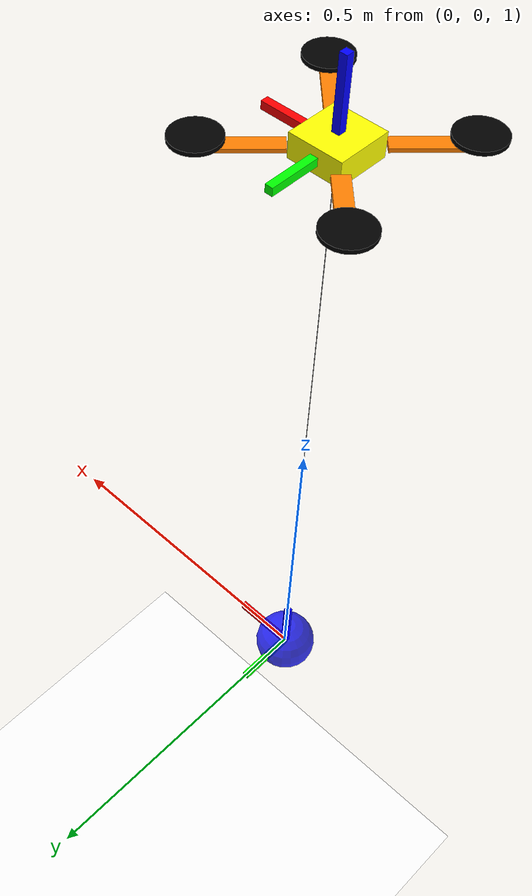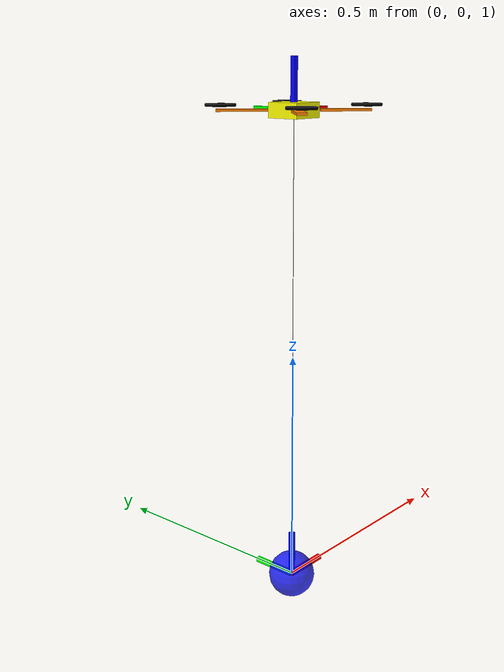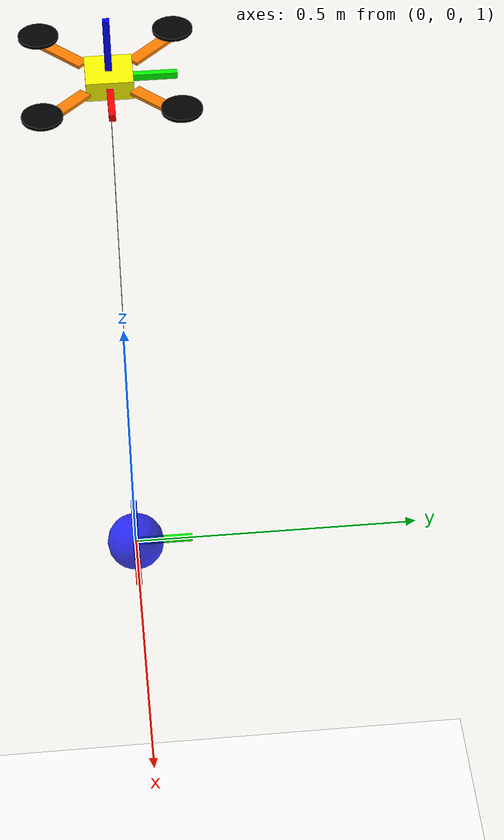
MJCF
<mujoco model="MuJoCo Model">
  <!--Compiler Options-->
  <compiler angle="radian"/>
  <option timestep="0.01" gravity="0 0 -9.81" density="1.225" viscosity="1.8e-05" integrator="RK4" jacobian="sparse">
    <flag energy="enable" contact="enable"/>
  </option>

<extension>
  <!-- Other plugins … (no configs on these if you don't need them) -->
  <plugin plugin="MujocoRosUtils::ClockPublisher"/>
  <plugin plugin="MujocoRosUtils::PosePublisher"/>
  <plugin plugin="MujocoRosUtils::ImagePublisher"/>
  <plugin plugin="MujocoRosUtils::ExternalForce"/>
  <plugin plugin="MujocoRosUtils::SensorPublisher"/>
  <plugin plugin="MujocoRosUtils::WrenchToActuators"/>
  <plugin plugin="MujocoRosUtils::OdometryPublisher"/>
</extension>

  <asset>
  <texture name="texchecker" type="2d" builtin="checker" width="512" height="512"
           rgb1="0.8 0.8 0.8" rgb2="0.2 0.2 0.2" />
  <material name="matchecker" texture="texchecker" texrepeat="4 4"
            reflectance="0.2" shininess="0.5" specular="0.3" />
  </asset>

  <worldbody>
    <light pos="0 0 1.5" dir="0 0 -1" directional="true"/>
    <geom name="floor" type="plane" size="20 20 0.1" material="matchecker"
      rgba="1 1 1 1" friction="1.0 0.005 0.0001" condim="3"/>

      <!--Quadrotor 0 -->
    <body name="drone_0" pos="0.0 0.0 2" euler="0 0 0">
      <joint name="drone_0" type="free" damping="0.001" armature="0" pos="0 0 0"/>

      <!-- Core: bright yellow for visibility -->
      <geom name="core" type="box" pos="0 0 0" quat="1. 0. 0. 0" size="0.035 0.035 0.015"
            rgba="1.0 1.0 0.0 1.0" mass=".84" friction="1.0 0.005 0.0001"/>

      <!-- Arms: bright orange -->
      <geom name="a00" type="box" pos=".071 0.071 0.0" size="0.05 0.01 0.0025"
            quat=".924 0.0 0.0 0.383" rgba="1.0 0.5 0.0 1.0" mass=".025"/>

      <geom name="a10" type="box" pos=".071 -0.071 0.0" size="0.05 0.01 0.0025"
            quat=".383 0.0 0.0 0.924" rgba="1.0 0.5 0.0 1.0" mass=".025"/>

      <geom name="a20" type="box" pos="-0.071 -0.071 0.0" size="0.05 0.01 0.0025"
            quat="-.383 0.0 0.0 0.924" rgba="1.0 0.5 0.0 1.0" mass=".025"/>

      <geom name="a30" type="box" pos="-.071 0.071 0.0" size="0.05 0.01 0.0025"
            quat=".924 0.0 0.0 -0.383" rgba="1.0 0.5 0.0 1.0" mass=".025"/>

      <!-- Thrusters: black for contrast -->
      <geom name="thruster00" type="cylinder" pos="0.1 0.1 0.01" size="0.03 0.0025"
            quat="1.0 0.0 0.0 0." rgba="0.0 0.0 0.0 1.0" mass=".015"/>
      <geom name="thruster10" type="cylinder" pos="0.1 -0.1 0.01" size="0.03 0.0025"
            quat="1.0 0.0 0.0 0." rgba="0.0 0.0 0.0 1.0" mass=".015"/>
      <geom name="thruster20" type="cylinder" pos="-0.1 -0.1 0.01" size="0.03 0.0025"
            quat="1.0 0.0 0.0 0." rgba="0.0 0.0 0.0 1.0" mass=".015"/>
      <geom name="thruster30" type="cylinder" pos="-0.1 0.1 0.01" size="0.03 0.0025"
            quat="1.0 0.0 0.0 0." rgba="0.0 0.0 0.0 1.0" mass=".015"/>

      <!-- Axes remain unchanged -->
      <site name="qcX" type="box" pos="0.05 0.0 0.0" size="0.05 0.005 0.005"
            quat="1.0 0.0 0.0 0." rgba="1 0 0 1"/>
      <site name="qcY" type="box" pos="0.0 0.05 0.0" size="0.05 0.005 0.005"
            quat="0.707 0.0 0.0 0.707" rgba="0 1 0 1"/>
      <site name="qcZ" type="box" pos="0.0 0.0 0.05" size="0.05 0.005 0.005"
            quat="-0.707 0.0 0.707 0." rgba="0 0 1 1"/>

      <!-- Actuator sites: bright cyan (unchanged) -->
      <site name="thrust" type="box" pos="0 0 0" size="0.035 0.035 0.015" quat="1.0 0.0 0.0 0." rgba="0 1 1 1"/>
      <site name="rateX" type="box" pos="0 0 0" quat="1. 0. 0. 0." size="0.035 0.035 0.015" rgba="0 1 1 1"/>
      <site name="rateY" type="box" pos="0 0 0" quat="1. 0. 0. 0." size="0.035 0.035 0.015" rgba="0 1 1 1"/>
      <site name="rateZ" type="box" pos="0 0 0" quat="1. 0. 0. 0." size="0.035 0.035 0.015" rgba="0 1 1 1"/>
      <site name="imu" pos="0 0 0"/>

      <site name="payload_point_drone_0" pos="0.0 0.0 -0.0"/>

      <camera name="camera_0" pos="0.035 0 -0.015" euler="0 0 -1.57"/>
    </body>

    <!-- Payloy only in xyz axis -->
    <body name="payload" pos="0.0 0.0 1.0">
      <joint name="payload" pos="0 0 0" type="free" damping="0.001"/>
      <geom name="payload"
        type="sphere"
        size="0.05 0.05 0.05"
        rgba="0 0 1 0.8"
        mass="0.17"
        friction="1.0 0.005 0.0001"/>
      <site name="payload_point" pos="0.0 0.0 0.05"/>
      <!--  Representation of the body frame   -->
      <site name="load_X" type="box" pos="0.05 0.0 0.0" size="0.05 0.005 0.005" quat=" 1.0 0.0 0.0 0." rgba="1 0 0 1"/>
      <site name="load_Y" type="box" pos="0.0 0.05 0.0" size="0.05 0.005 0.005" quat=" 0.707 0.0 0.0 0.707" rgba="0 1 0 1"/>
      <site name="load_Z" type="box" pos="0.0 0.0 0.05" size="0.05 0.005 0.005" quat="-0.707 0.0 0.707 0." rgba="0 0 1 1"/>
    </body>
  </worldbody>

  <actuator>
    <motor ctrllimited="true" ctrlrange="0 40.0" gear="0 0. 1. 0. 0. 0." site="thrust" name="body_thrust"/>
    <motor ctrllimited="true" ctrlrange="-0.5 0.5" gear="0. 0. 0. 1. 0. 0." site="rateX" name="x_moment"/>
    <motor ctrllimited="true" ctrlrange="-0.5 0.5" gear="0. 0. 0. 0. 1. 0." site="rateY" name="y_moment"/>
    <motor ctrllimited="true" ctrlrange="-0.5 0.5" gear="0. 0. 0. 0. 0. 1." site="rateZ" name="z_moment"/>
<plugin name="SO3_0" plugin="MujocoRosUtils::WrenchToActuators" joint="drone_0">
    <config key="topic_name"   value="/drone_0/position_cmd"/>
    <config key="actuator_fz"  value="body_thrust"/>
    <config key="actuator_tx"  value="x_moment"/>
    <config key="actuator_ty"  value="y_moment"/>
    <config key="actuator_tz"  value="z_moment"/>
    <config key="control_hz"   value="500"/>
    <config key="body_name"    value="drone_0"/>
  </plugin>
</actuator>

<tendon>
        <spatial name="rope0" limited="true" range="0 1" width=".0005">
            <site site="payload_point_drone_0"/>
            <site site="payload_point"/>
        </spatial>
</tendon>
  <sensor>
    <plugin name="odom_publisher_drone_0" plugin="MujocoRosUtils::OdometryPublisher" objtype="xbody" objname="drone_0">
      <config key="frame_id" value="world"/>
      <config key="odom_topic_name" value="drone_0/odom"/>
      <config key="publish_rate" value="100"/>
      <config key="child_frame_id" value="drone_0"/>
    </plugin>

    <plugin name="odom_payload" plugin="MujocoRosUtils::OdometryPublisher" objtype="xbody" objname="payload">
      <config key="frame_id" value="world"/>
      <config key="odom_topic_name" value="payload/odom"/>
      <config key="publish_rate" value="100"/>
      <config key="child_frame_id" value="payload"/>
    </plugin>

    <plugin name="image_publisher_0" plugin="MujocoRosUtils::ImagePublisher" objtype="camera" objname="camera_0">
      <config key="frame_id" value="camera_0"/>
      <config key="color_topic_name" value="/drone_0/image/color"/>
      <config key="depth_topic_name" value="/drone_0/image/depth"/>
      <config key="info_topic_name" value="/drone_0/image/camera_info"/>
      <config key="height" value="240"/>
      <config key="width" value="320"/>
      <config key="publish_rate" value="30"/>
    </plugin>
  </sensor>
</mujoco>
